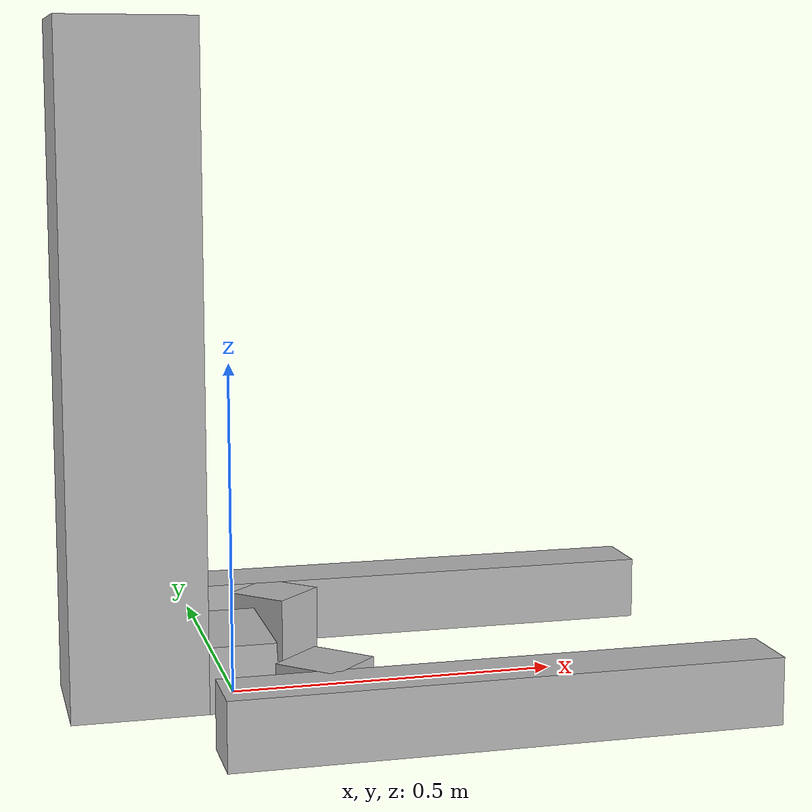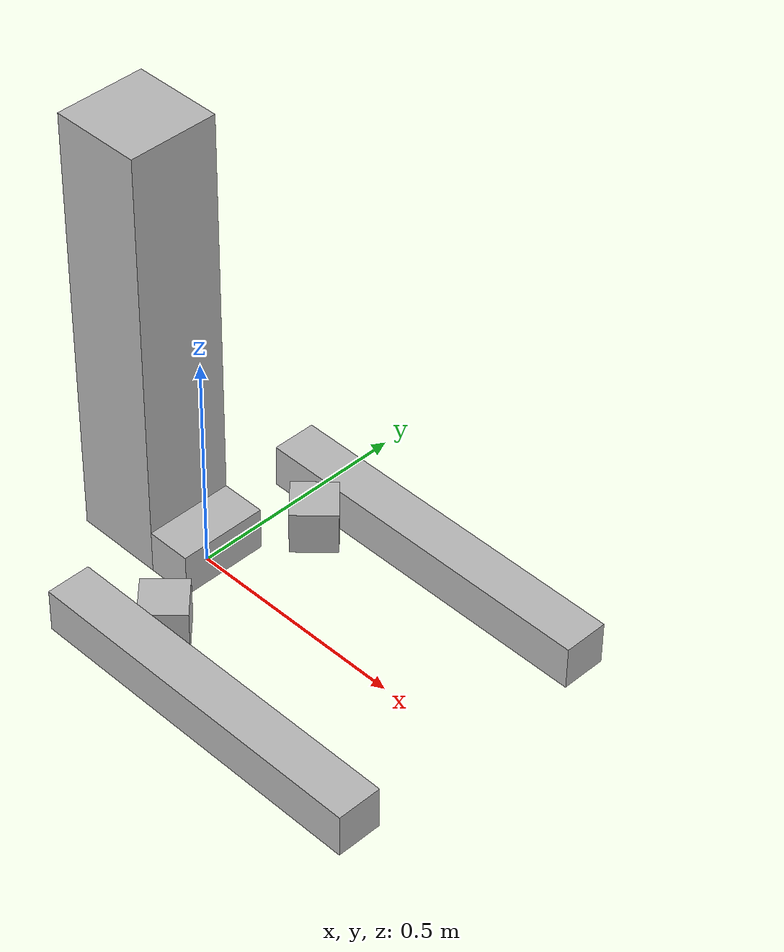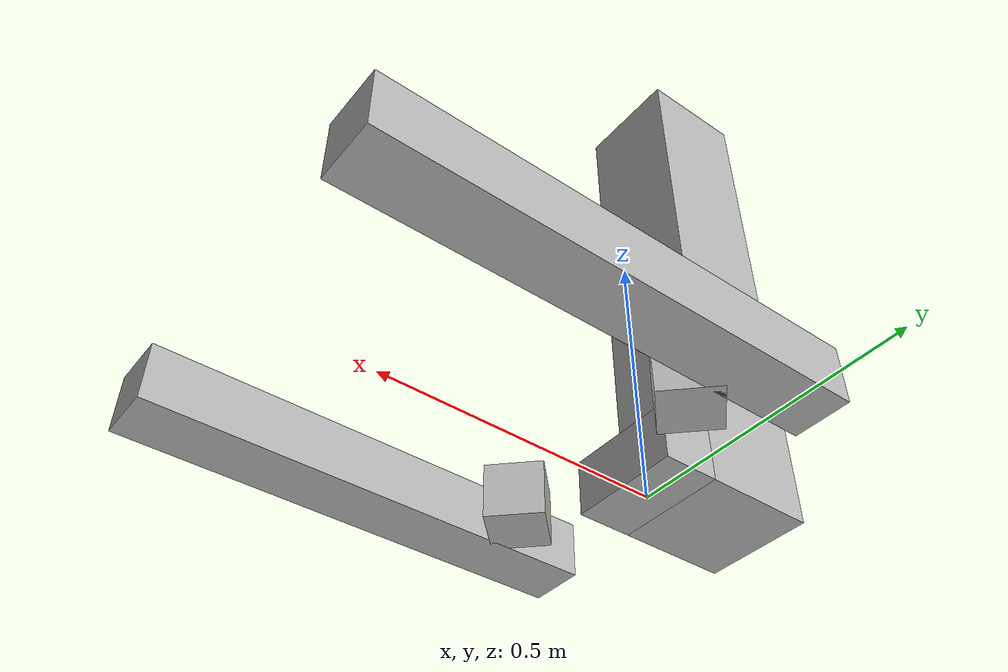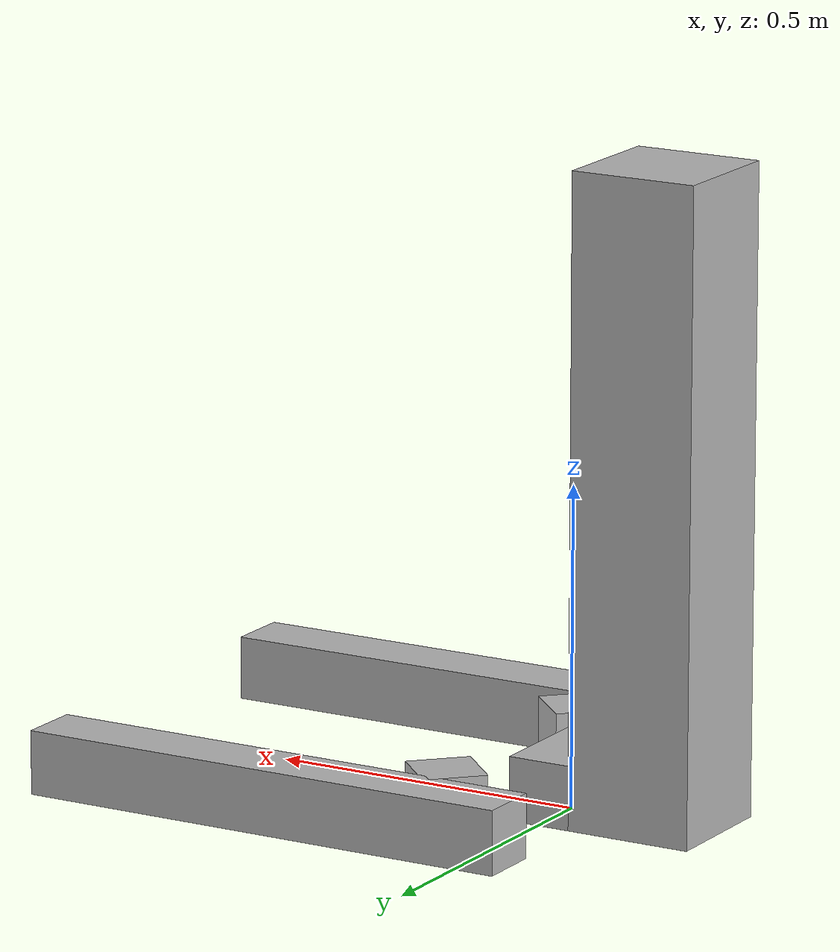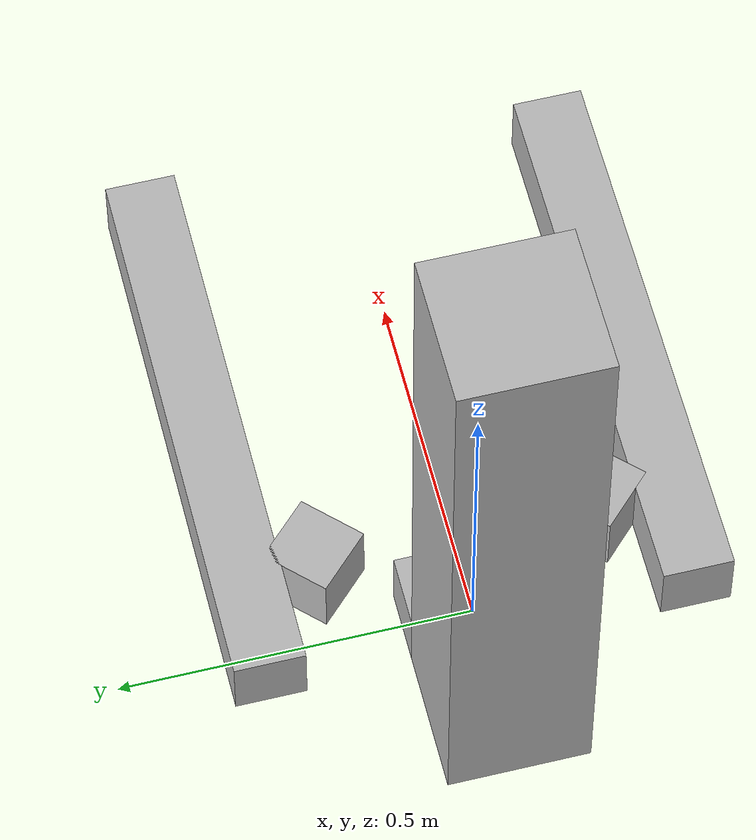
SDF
<?xml version="1.0"?>
<sdf version="1.4">
    <model name="simple_gripper">
        <link name="riser">
      <self_collide>1</self_collide>
            <pose>-0.15 0.0 0.5 0 0 0</pose>
            <inertial>
                <pose>0 0 -0.5 0 0 0</pose>
                <inertia>
                    <ixx>0.01</ixx>
                    <ixy>0</ixy>
                    <ixz>0</ixz>
                    <iyy>0.01</iyy>
                    <iyz>0</iyz>
                    <izz>0.01</izz>
                </inertia>
                <mass>10.0</mass>
            </inertial>
            <collision name="collision">

                <geometry>
                    <box>
                        <size>0.2 0.2 1.0</size>
                    </box>
                </geometry>
            </collision>
            <visual name="visual">
                <geometry>
                    <box>
                        <size>0.2 0.2 1.0</size>
                    </box>
                </geometry>
                <material>
                    <script>Gazebo/Purple</script>
                </material>
            </visual>
        </link>
        <link name="palm">
<self_collide>1</self_collide>
            <pose>0.0 0.0 0.05 0 0 0</pose>
            <inertial>
                <inertia>
                    <ixx>0.01</ixx>
                    <ixy>0</ixy>
                    <ixz>0</ixz>
                    <iyy>0.01</iyy>
                    <iyz>0</iyz>
                    <izz>0.01</izz>
                </inertia>
                <mass>0.5</mass>
            </inertial>
            <collision name="collision">
                <geometry>
                    <box>
                        <size>0.1 0.2 0.1</size>
                    </box>
                </geometry>
            </collision>
            <visual name="visual">
                <geometry>
                    <box>
                        <size>0.1 0.2 0.1</size>
                    </box>
                </geometry>
                <material>
                    <script>Gazebo/Red</script>
                </material>
            </visual>
        </link>
        <link name="left_finger">
<self_collide>1</self_collide>
            <pose>0.1 0.2 0.05 0 0 -0.78539</pose>
            <inertial>
                <inertia>
                    <ixx>0.01</ixx>
                    <ixy>0</ixy>
                    <ixz>0</ixz>
                    <iyy>0.01</iyy>
                    <iyz>0</iyz>
                    <izz>0.01</izz>
                </inertia>
                <mass>0.1</mass>
            </inertial>
            <collision name="collision">

                <geometry>
                    <box>
                        <size>0.1 0.1 0.1</size>
                    </box>
                </geometry>
            </collision>
            <visual name="visual">
                <geometry>
                    <box>
                        <size>0.1 0.1 0.1</size>
                    </box>
                </geometry>
                <material>
                    <script>Gazebo/Blue</script>
                </material>
            </visual>
        </link>
        <link name="left_finger_tip">
	<self_collide>1</self_collide>
            <pose>0.336 0.3 0.05 0 0 1.5707</pose>
            <inertial>
                <inertia>
                    <ixx>0.01</ixx>
                    <ixy>0</ixy>
                    <ixz>0</ixz>
                    <iyy>0.01</iyy>
                    <iyz>0</iyz>
                    <izz>0.01</izz>
                </inertia>
                <mass>0.1</mass>
            </inertial>
            <collision name="collision">

                <geometry>
                    <box>
                        <size>0.1 0.8 0.1</size>
                    </box>
                </geometry>
            </collision>
            <visual name="visual">
                <geometry>
                    <box>
                        <size>0.1 0.8 0.1</size>
                    </box>
                </geometry>
                <material>
                    <script>Gazebo/Blue</script>
                </material>
            </visual>
        </link>
        <link name="right_finger">
<self_collide>1</self_collide>
            <pose>0.1 -0.2 0.05 0 0 .78539</pose>
            <inertial>
                <inertia>
                    <ixx>0.01</ixx>
                    <ixy>0</ixy>
                    <ixz>0</ixz>
                    <iyy>0.01</iyy>
                    <iyz>0</iyz>
                    <izz>0.01</izz>
                </inertia>
                <mass>0.1</mass>
            </inertial>
            <collision name="collision">

                <geometry>
                    <box>
                        <size>0.1 0.1 0.1</size>
                    </box>
                </geometry>
            </collision>
            <visual name="visual">
                <geometry>
                    <box>
                        <size>0.1 0.1 0.1</size>
                    </box>
                </geometry>
                <material>
                    <script>Gazebo/Green</script>
                </material>
            </visual>
        </link>
        <link name="right_finger_tip">
<self_collide>1</self_collide>
            <pose>0.336 -0.3 0.05 0 0 1.5707</pose>
            <inertial>
                <inertia>
                    <ixx>0.01</ixx>
                    <ixy>0</ixy>
                    <ixz>0</ixz>
                    <iyy>0.01</iyy>
                    <iyz>0</iyz>
                    <izz>0.01</izz>
                </inertia>
                <mass>0.1</mass>
            </inertial>
            <collision name="collision">

                <geometry>
                    <box>
                        <size>0.1 0.8 0.1</size>
                    </box>
                </geometry>
            </collision>
            <visual name="visual">
                <geometry>
                    <box>
                        <size>0.1 0.8 0.1</size>
                    </box>
                </geometry>
                <material>
                    <script>Gazebo/Green</script>
                </material>
            </visual>
        </link>
        <static>false</static>

<joint name="palm_left_finger" type="revolute">
            <pose>0 -0.15 0 0 0 0</pose>
            <child>left_finger</child>
            <parent>palm</parent>
            <axis>
                <limit>
                    <lower>-2</lower>
                    <upper>2</upper>
                </limit>
                <xyz>0 0 1</xyz>
            </axis>
        </joint>
        <joint name="left_finger_tip" type="revolute">
            <pose>0 0.1 0 0 0 0</pose>
            <child>left_finger_tip</child>
            <parent>left_finger</parent>
            <axis>
                <limit>
                    <lower>-2</lower>
                    <upper>2</upper>
                </limit>
                <xyz>0 0 1</xyz>
            </axis>
        </joint>
        <joint name="palm_right_finger" type="revolute">
            <pose>0 0.15 0 0 0 0</pose>
            <child>right_finger</child>
            <parent>palm</parent>
            <axis>
                <limit>
                    <lower>-2</lower>
                    <upper>2</upper>
                </limit>
                <xyz>0 0 1</xyz>
            </axis>
        </joint>
        <joint name="right_finger_tip" type="revolute">
            <pose>0 0.1 0 0 0 0</pose>
            <child>right_finger_tip</child>
            <parent>right_finger</parent>
            <axis>
                <limit>
                    <lower>-2</lower>
                    <upper>2</upper>
                </limit>
                <xyz>0 0 1</xyz>
            </axis>
        </joint>
        <joint name="palm_riser" type="prismatic">
            <child>palm</child>
            <parent>riser</parent>
            <axis>
                <limit>
                    <lower>0</lower>
                    <upper>2</upper>
                </limit>
                <xyz>0 0 1</xyz>
            </axis>
        </joint>
    </model>

</sdf>
